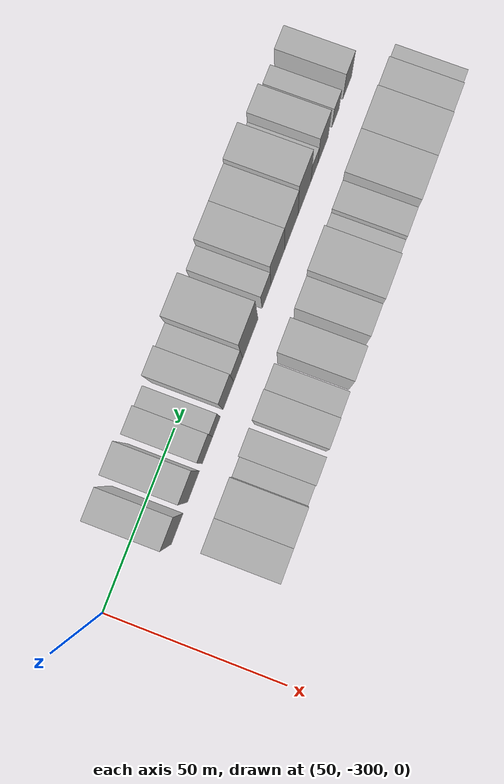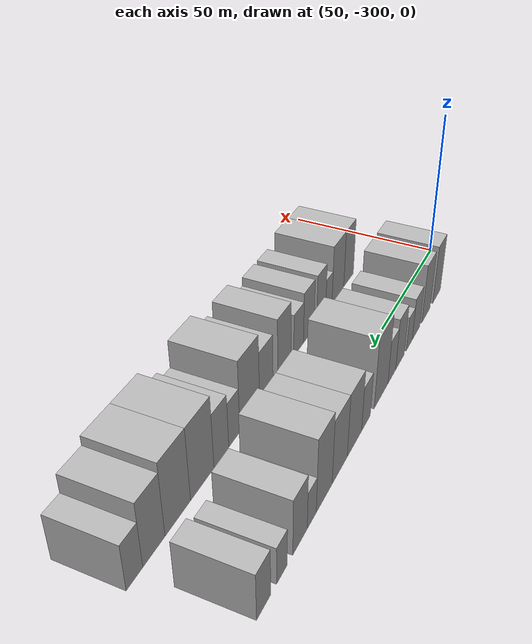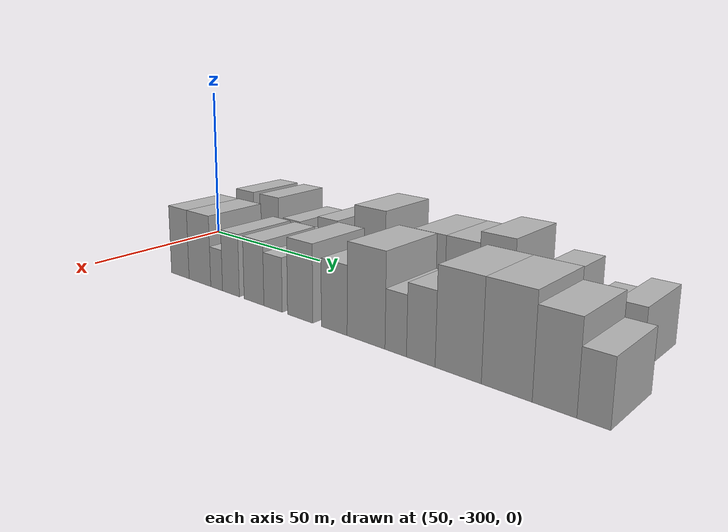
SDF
<sdf version="1.6">
 <world name="default">
  <model name="building_1">
   <static>1</static>
   <pose>50.0000 -273.7978 0 0.000000 0.000000 0.000000</pose>
   <link name="link">
    <pose>0 0 10.50 0 0 0</pose>
    <collision name="collision"><geometry><box><size>20.0000 8.4044 21.0000</size></box></geometry></collision>
    <visual name="visual">
     <cast_shadows>0</cast_shadows>
     <geometry><box><size>20.0000 8.4044 21.0000</size></box></geometry>
     <material>
      <script>
       <uri>model://HANNAS_wall/materials/scripts</uri>
       <uri>model://HANNAS_wall/materials/textures</uri>
       <name>vrc/HANNAS_wall</name>
      </script>
     </material>
    </visual>
   </link>
  </model>
  <model name="building_2">
   <static>1</static>
   <pose>50.0000 -262.3265 0 0.000000 0.000000 0.000000</pose>
   <link name="link">
    <pose>0 0 10.50 0 0 0</pose>
    <collision name="collision"><geometry><box><size>20.0000 8.5382 21.0000</size></box></geometry></collision>
    <visual name="visual">
     <cast_shadows>0</cast_shadows>
     <geometry><box><size>20.0000 8.5382 21.0000</size></box></geometry>
     <material>
      <script>
       <uri>model://HANNAS_wall/materials/scripts</uri>
       <uri>model://HANNAS_wall/materials/textures</uri>
       <name>vrc/HANNAS_wall</name>
      </script>
     </material>
    </visual>
   </link>
  </model>
  <model name="building_3">
   <static>1</static>
   <pose>50.0000 -252.3087 0 0.000000 0.000000 0.000000</pose>
   <link name="link">
    <pose>0 0 7.50 0 0 0</pose>
    <collision name="collision"><geometry><box><size>20.0000 7.4974 15.0000</size></box></geometry></collision>
    <visual name="visual">
     <cast_shadows>0</cast_shadows>
     <geometry><box><size>20.0000 7.4974 15.0000</size></box></geometry>
     <material>
      <script>
       <uri>model://HANNAS_wall/materials/scripts</uri>
       <uri>model://HANNAS_wall/materials/textures</uri>
       <name>vrc/HANNAS_wall</name>
      </script>
     </material>
    </visual>
   </link>
  </model>
  <model name="building_4">
   <static>1</static>
   <pose>50.0000 -245.8034 0 0.000000 0.000000 0.000000</pose>
   <link name="link">
    <pose>0 0 6.00 0 0 0</pose>
    <collision name="collision"><geometry><box><size>20.0000 5.5133 12.0000</size></box></geometry></collision>
    <visual name="visual">
     <cast_shadows>0</cast_shadows>
     <geometry><box><size>20.0000 5.5133 12.0000</size></box></geometry>
     <material>
      <script>
       <uri>model://HANNAS_wall/materials/scripts</uri>
       <uri>model://HANNAS_wall/materials/textures</uri>
       <name>vrc/HANNAS_wall</name>
      </script>
     </material>
    </visual>
   </link>
  </model>
  <model name="building_5">
   <static>1</static>
   <pose>50.0000 -237.1471 0 0.000000 0.000000 0.000000</pose>
   <link name="link">
    <pose>0 0 9.00 0 0 0</pose>
    <collision name="collision"><geometry><box><size>20.0000 7.7992 18.0000</size></box></geometry></collision>
    <visual name="visual">
     <cast_shadows>0</cast_shadows>
     <geometry><box><size>20.0000 7.7992 18.0000</size></box></geometry>
     <material>
      <script>
       <uri>model://HANNAS_wall/materials/scripts</uri>
       <uri>model://HANNAS_wall/materials/textures</uri>
       <name>vrc/HANNAS_wall</name>
      </script>
     </material>
    </visual>
   </link>
  </model>
  <model name="building_6">
   <static>1</static>
   <pose>50.0000 -229.9238 0 0.000000 0.000000 0.000000</pose>
   <link name="link">
    <pose>0 0 7.50 0 0 0</pose>
    <collision name="collision"><geometry><box><size>20.0000 6.6475 15.0000</size></box></geometry></collision>
    <visual name="visual">
     <cast_shadows>0</cast_shadows>
     <geometry><box><size>20.0000 6.6475 15.0000</size></box></geometry>
     <material>
      <script>
       <uri>model://HANNAS_wall/materials/scripts</uri>
       <uri>model://HANNAS_wall/materials/textures</uri>
       <name>vrc/HANNAS_wall</name>
      </script>
     </material>
    </visual>
   </link>
  </model>
  <model name="building_7">
   <static>1</static>
   <pose>50.0000 -220.9443 0 0.000000 0.000000 0.000000</pose>
   <link name="link">
    <pose>0 0 12.00 0 0 0</pose>
    <collision name="collision"><geometry><box><size>20.0000 11.3114 24.0000</size></box></geometry></collision>
    <visual name="visual">
     <cast_shadows>0</cast_shadows>
     <geometry><box><size>20.0000 11.3114 24.0000</size></box></geometry>
     <material>
      <script>
       <uri>model://HANNAS_wall/materials/scripts</uri>
       <uri>model://HANNAS_wall/materials/textures</uri>
       <name>vrc/HANNAS_wall</name>
      </script>
     </material>
    </visual>
   </link>
  </model>
  <model name="building_8">
   <static>1</static>
   <pose>50.0000 -208.9411 0 0.000000 0.000000 0.000000</pose>
   <link name="link">
    <pose>0 0 7.50 0 0 0</pose>
    <collision name="collision"><geometry><box><size>20.0000 6.6950 15.0000</size></box></geometry></collision>
    <visual name="visual">
     <cast_shadows>0</cast_shadows>
     <geometry><box><size>20.0000 6.6950 15.0000</size></box></geometry>
     <material>
      <script>
       <uri>model://HANNAS_wall/materials/scripts</uri>
       <uri>model://HANNAS_wall/materials/textures</uri>
       <name>vrc/HANNAS_wall</name>
      </script>
     </material>
    </visual>
   </link>
  </model>
  <model name="building_9">
   <static>1</static>
   <pose>50.0000 -200.4397 0 0.000000 0.000000 0.000000</pose>
   <link name="link">
    <pose>0 0 10.50 0 0 0</pose>
    <collision name="collision"><geometry><box><size>20.0000 10.3080 21.0000</size></box></geometry></collision>
    <visual name="visual">
     <cast_shadows>0</cast_shadows>
     <geometry><box><size>20.0000 10.3080 21.0000</size></box></geometry>
     <material>
      <script>
       <uri>model://HANNAS_wall/materials/scripts</uri>
       <uri>model://HANNAS_wall/materials/textures</uri>
       <name>vrc/HANNAS_wall</name>
      </script>
     </material>
    </visual>
   </link>
  </model>
  <model name="building_10">
   <static>1</static>
   <pose>50.0000 -190.1663 0 0.000000 0.000000 0.000000</pose>
   <link name="link">
    <pose>0 0 10.50 0 0 0</pose>
    <collision name="collision"><geometry><box><size>20.0000 10.2386 21.0000</size></box></geometry></collision>
    <visual name="visual">
     <cast_shadows>0</cast_shadows>
     <geometry><box><size>20.0000 10.2386 21.0000</size></box></geometry>
     <material>
      <script>
       <uri>model://HANNAS_wall/materials/scripts</uri>
       <uri>model://HANNAS_wall/materials/textures</uri>
       <name>vrc/HANNAS_wall</name>
      </script>
     </material>
    </visual>
   </link>
  </model>
  <model name="building_11">
   <static>1</static>
   <pose>50.0000 -180.0486 0 0.000000 0.000000 0.000000</pose>
   <link name="link">
    <pose>0 0 12.00 0 0 0</pose>
    <collision name="collision"><geometry><box><size>20.0000 9.9968 24.0000</size></box></geometry></collision>
    <visual name="visual">
     <cast_shadows>0</cast_shadows>
     <geometry><box><size>20.0000 9.9968 24.0000</size></box></geometry>
     <material>
      <script>
       <uri>model://HANNAS_wall/materials/scripts</uri>
       <uri>model://HANNAS_wall/materials/textures</uri>
       <name>vrc/HANNAS_wall</name>
      </script>
     </material>
    </visual>
   </link>
  </model>
  <model name="building_12">
   <static>1</static>
   <pose>50.0000 -172.3414 0 0.000000 0.000000 0.000000</pose>
   <link name="link">
    <pose>0 0 6.00 0 0 0</pose>
    <collision name="collision"><geometry><box><size>20.0000 5.4176 12.0000</size></box></geometry></collision>
    <visual name="visual">
     <cast_shadows>0</cast_shadows>
     <geometry><box><size>20.0000 5.4176 12.0000</size></box></geometry>
     <material>
      <script>
       <uri>model://HANNAS_wall/materials/scripts</uri>
       <uri>model://HANNAS_wall/materials/textures</uri>
       <name>vrc/HANNAS_wall</name>
      </script>
     </material>
    </visual>
   </link>
  </model>
  <model name="building_13">
   <static>1</static>
   <pose>50.0000 -165.5257 0 0.000000 0.000000 0.000000</pose>
   <link name="link">
    <pose>0 0 9.00 0 0 0</pose>
    <collision name="collision"><geometry><box><size>20.0000 8.2139 18.0000</size></box></geometry></collision>
    <visual name="visual">
     <cast_shadows>0</cast_shadows>
     <geometry><box><size>20.0000 8.2139 18.0000</size></box></geometry>
     <material>
      <script>
       <uri>model://HANNAS_wall/materials/scripts</uri>
       <uri>model://HANNAS_wall/materials/textures</uri>
       <name>vrc/HANNAS_wall</name>
      </script>
     </material>
    </visual>
   </link>
  </model>
  <model name="building_14">
   <static>1</static>
   <pose>50.0000 -155.6016 0 0.000000 0.000000 0.000000</pose>
   <link name="link">
    <pose>0 0 6.00 0 0 0</pose>
    <collision name="collision"><geometry><box><size>20.0000 5.6343 12.0000</size></box></geometry></collision>
    <visual name="visual">
     <cast_shadows>0</cast_shadows>
     <geometry><box><size>20.0000 5.6343 12.0000</size></box></geometry>
     <material>
      <script>
       <uri>model://HANNAS_wall/materials/scripts</uri>
       <uri>model://HANNAS_wall/materials/textures</uri>
       <name>vrc/HANNAS_wall</name>
      </script>
     </material>
    </visual>
   </link>
  </model>
  <model name="building_15">
   <static>1</static>
   <pose>50.0000 -146.2886 0 0.000000 0.000000 0.000000</pose>
   <link name="link">
    <pose>0 0 7.50 0 0 0</pose>
    <collision name="collision"><geometry><box><size>20.0000 6.9917 15.0000</size></box></geometry></collision>
    <visual name="visual">
     <cast_shadows>0</cast_shadows>
     <geometry><box><size>20.0000 6.9917 15.0000</size></box></geometry>
     <material>
      <script>
       <uri>model://HANNAS_wall/materials/scripts</uri>
       <uri>model://HANNAS_wall/materials/textures</uri>
       <name>vrc/HANNAS_wall</name>
      </script>
     </material>
    </visual>
   </link>
  </model>
  <model name="building_62">
   <static>1</static>
   <pose>79.0000 -270.6791 0 0.000000 0.000000 0.000000</pose>
   <link name="link">
    <pose>0 0 10.50 0 0 0</pose>
    <collision name="collision"><geometry><box><size>20.0000 8.6419 21.0000</size></box></geometry></collision>
    <visual name="visual">
     <cast_shadows>0</cast_shadows>
     <geometry><box><size>20.0000 8.6419 21.0000</size></box></geometry>
     <material>
      <script>
       <uri>model://HANNAS_wall/materials/scripts</uri>
       <uri>model://HANNAS_wall/materials/textures</uri>
       <name>vrc/HANNAS_wall</name>
      </script>
     </material>
    </visual>
   </link>
  </model>
  <model name="building_63">
   <static>1</static>
   <pose>79.0000 -261.2959 0 0.000000 0.000000 0.000000</pose>
   <link name="link">
    <pose>0 0 10.50 0 0 0</pose>
    <collision name="collision"><geometry><box><size>20.0000 10.1245 21.0000</size></box></geometry></collision>
    <visual name="visual">
     <cast_shadows>0</cast_shadows>
     <geometry><box><size>20.0000 10.1245 21.0000</size></box></geometry>
     <material>
      <script>
       <uri>model://HANNAS_wall/materials/scripts</uri>
       <uri>model://HANNAS_wall/materials/textures</uri>
       <name>vrc/HANNAS_wall</name>
      </script>
     </material>
    </visual>
   </link>
  </model>
  <model name="building_64">
   <static>1</static>
   <pose>79.0000 -253.6037 0 0.000000 0.000000 0.000000</pose>
   <link name="link">
    <pose>0 0 6.00 0 0 0</pose>
    <collision name="collision"><geometry><box><size>20.0000 5.2600 12.0000</size></box></geometry></collision>
    <visual name="visual">
     <cast_shadows>0</cast_shadows>
     <geometry><box><size>20.0000 5.2600 12.0000</size></box></geometry>
     <material>
      <script>
       <uri>model://HANNAS_wall/materials/scripts</uri>
       <uri>model://HANNAS_wall/materials/textures</uri>
       <name>vrc/HANNAS_wall</name>
      </script>
     </material>
    </visual>
   </link>
  </model>
  <model name="building_65">
   <static>1</static>
   <pose>79.0000 -247.3460 0 0.000000 0.000000 0.000000</pose>
   <link name="link">
    <pose>0 0 9.00 0 0 0</pose>
    <collision name="collision"><geometry><box><size>20.0000 7.2553 18.0000</size></box></geometry></collision>
    <visual name="visual">
     <cast_shadows>0</cast_shadows>
     <geometry><box><size>20.0000 7.2553 18.0000</size></box></geometry>
     <material>
      <script>
       <uri>model://HANNAS_wall/materials/scripts</uri>
       <uri>model://HANNAS_wall/materials/textures</uri>
       <name>vrc/HANNAS_wall</name>
      </script>
     </material>
    </visual>
   </link>
  </model>
  <model name="building_66">
   <static>1</static>
   <pose>79.0000 -237.7049 0 0.000000 0.000000 0.000000</pose>
   <link name="link">
    <pose>0 0 9.00 0 0 0</pose>
    <collision name="collision"><geometry><box><size>20.0000 8.0270 18.0000</size></box></geometry></collision>
    <visual name="visual">
     <cast_shadows>0</cast_shadows>
     <geometry><box><size>20.0000 8.0270 18.0000</size></box></geometry>
     <material>
      <script>
       <uri>model://HANNAS_wall/materials/scripts</uri>
       <uri>model://HANNAS_wall/materials/textures</uri>
       <name>vrc/HANNAS_wall</name>
      </script>
     </material>
    </visual>
   </link>
  </model>
  <model name="building_67">
   <static>1</static>
   <pose>79.0000 -230.1303 0 0.000000 0.000000 0.000000</pose>
   <link name="link">
    <pose>0 0 7.50 0 0 0</pose>
    <collision name="collision"><geometry><box><size>20.0000 7.1221 15.0000</size></box></geometry></collision>
    <visual name="visual">
     <cast_shadows>0</cast_shadows>
     <geometry><box><size>20.0000 7.1221 15.0000</size></box></geometry>
     <material>
      <script>
       <uri>model://HANNAS_wall/materials/scripts</uri>
       <uri>model://HANNAS_wall/materials/textures</uri>
       <name>vrc/HANNAS_wall</name>
      </script>
     </material>
    </visual>
   </link>
  </model>
  <model name="building_68">
   <static>1</static>
   <pose>79.0000 -220.0024 0 0.000000 0.000000 0.000000</pose>
   <link name="link">
    <pose>0 0 10.50 0 0 0</pose>
    <collision name="collision"><geometry><box><size>20.0000 9.1338 21.0000</size></box></geometry></collision>
    <visual name="visual">
     <cast_shadows>0</cast_shadows>
     <geometry><box><size>20.0000 9.1338 21.0000</size></box></geometry>
     <material>
      <script>
       <uri>model://HANNAS_wall/materials/scripts</uri>
       <uri>model://HANNAS_wall/materials/textures</uri>
       <name>vrc/HANNAS_wall</name>
      </script>
     </material>
    </visual>
   </link>
  </model>
  <model name="building_69">
   <static>1</static>
   <pose>79.0000 -208.1065 0 0.000000 0.000000 0.000000</pose>
   <link name="link">
    <pose>0 0 9.00 0 0 0</pose>
    <collision name="collision"><geometry><box><size>20.0000 8.6578 18.0000</size></box></geometry></collision>
    <visual name="visual">
     <cast_shadows>0</cast_shadows>
     <geometry><box><size>20.0000 8.6578 18.0000</size></box></geometry>
     <material>
      <script>
       <uri>model://HANNAS_wall/materials/scripts</uri>
       <uri>model://HANNAS_wall/materials/textures</uri>
       <name>vrc/HANNAS_wall</name>
      </script>
     </material>
    </visual>
   </link>
  </model>
  <model name="building_70">
   <static>1</static>
   <pose>79.0000 -197.8591 0 0.000000 0.000000 0.000000</pose>
   <link name="link">
    <pose>0 0 12.00 0 0 0</pose>
    <collision name="collision"><geometry><box><size>20.0000 11.8370 24.0000</size></box></geometry></collision>
    <visual name="visual">
     <cast_shadows>0</cast_shadows>
     <geometry><box><size>20.0000 11.8370 24.0000</size></box></geometry>
     <material>
      <script>
       <uri>model://HANNAS_wall/materials/scripts</uri>
       <uri>model://HANNAS_wall/materials/textures</uri>
       <name>vrc/HANNAS_wall</name>
      </script>
     </material>
    </visual>
   </link>
  </model>
  <model name="building_71">
   <static>1</static>
   <pose>79.0000 -188.7958 0 0.000000 0.000000 0.000000</pose>
   <link name="link">
    <pose>0 0 7.50 0 0 0</pose>
    <collision name="collision"><geometry><box><size>20.0000 6.2895 15.0000</size></box></geometry></collision>
    <visual name="visual">
     <cast_shadows>0</cast_shadows>
     <geometry><box><size>20.0000 6.2895 15.0000</size></box></geometry>
     <material>
      <script>
       <uri>model://HANNAS_wall/materials/scripts</uri>
       <uri>model://HANNAS_wall/materials/textures</uri>
       <name>vrc/HANNAS_wall</name>
      </script>
     </material>
    </visual>
   </link>
  </model>
  <model name="building_72">
   <static>1</static>
   <pose>79.0000 -181.6646 0 0.000000 0.000000 0.000000</pose>
   <link name="link">
    <pose>0 0 9.00 0 0 0</pose>
    <collision name="collision"><geometry><box><size>20.0000 7.9730 18.0000</size></box></geometry></collision>
    <visual name="visual">
     <cast_shadows>0</cast_shadows>
     <geometry><box><size>20.0000 7.9730 18.0000</size></box></geometry>
     <material>
      <script>
       <uri>model://HANNAS_wall/materials/scripts</uri>
       <uri>model://HANNAS_wall/materials/textures</uri>
       <name>vrc/HANNAS_wall</name>
      </script>
     </material>
    </visual>
   </link>
  </model>
  <model name="building_73">
   <static>1</static>
   <pose>79.0000 -171.7264 0 0.000000 0.000000 0.000000</pose>
   <link name="link">
    <pose>0 0 12.00 0 0 0</pose>
    <collision name="collision"><geometry><box><size>20.0000 11.9034 24.0000</size></box></geometry></collision>
    <visual name="visual">
     <cast_shadows>0</cast_shadows>
     <geometry><box><size>20.0000 11.9034 24.0000</size></box></geometry>
     <material>
      <script>
       <uri>model://HANNAS_wall/materials/scripts</uri>
       <uri>model://HANNAS_wall/materials/textures</uri>
       <name>vrc/HANNAS_wall</name>
      </script>
     </material>
    </visual>
   </link>
  </model>
  <model name="building_74">
   <static>1</static>
   <pose>79.0000 -159.8148 0 0.000000 0.000000 0.000000</pose>
   <link name="link">
    <pose>0 0 12.00 0 0 0</pose>
    <collision name="collision"><geometry><box><size>20.0000 11.9200 24.0000</size></box></geometry></collision>
    <visual name="visual">
     <cast_shadows>0</cast_shadows>
     <geometry><box><size>20.0000 11.9200 24.0000</size></box></geometry>
     <material>
      <script>
       <uri>model://HANNAS_wall/materials/scripts</uri>
       <uri>model://HANNAS_wall/materials/textures</uri>
       <name>vrc/HANNAS_wall</name>
      </script>
     </material>
    </visual>
   </link>
  </model>
  <model name="building_75">
   <static>1</static>
   <pose>79.0000 -149.0634 0 0.000000 0.000000 0.000000</pose>
   <link name="link">
    <pose>0 0 10.50 0 0 0</pose>
    <collision name="collision"><geometry><box><size>20.0000 9.5827 21.0000</size></box></geometry></collision>
    <visual name="visual">
     <cast_shadows>0</cast_shadows>
     <geometry><box><size>20.0000 9.5827 21.0000</size></box></geometry>
     <material>
      <script>
       <uri>model://HANNAS_wall/materials/scripts</uri>
       <uri>model://HANNAS_wall/materials/textures</uri>
       <name>vrc/HANNAS_wall</name>
      </script>
     </material>
    </visual>
   </link>
  </model>
  <model name="building_76">
   <static>1</static>
   <pose>79.0000 -140.8687 0 0.000000 0.000000 0.000000</pose>
   <link name="link">
    <pose>0 0 7.50 0 0 0</pose>
    <collision name="collision"><geometry><box><size>20.0000 6.8067 15.0000</size></box></geometry></collision>
    <visual name="visual">
     <cast_shadows>0</cast_shadows>
     <geometry><box><size>20.0000 6.8067 15.0000</size></box></geometry>
     <material>
      <script>
       <uri>model://HANNAS_wall/materials/scripts</uri>
       <uri>model://HANNAS_wall/materials/textures</uri>
       <name>vrc/HANNAS_wall</name>
      </script>
     </material>
    </visual>
   </link>
  </model>
 </world>
</sdf>
